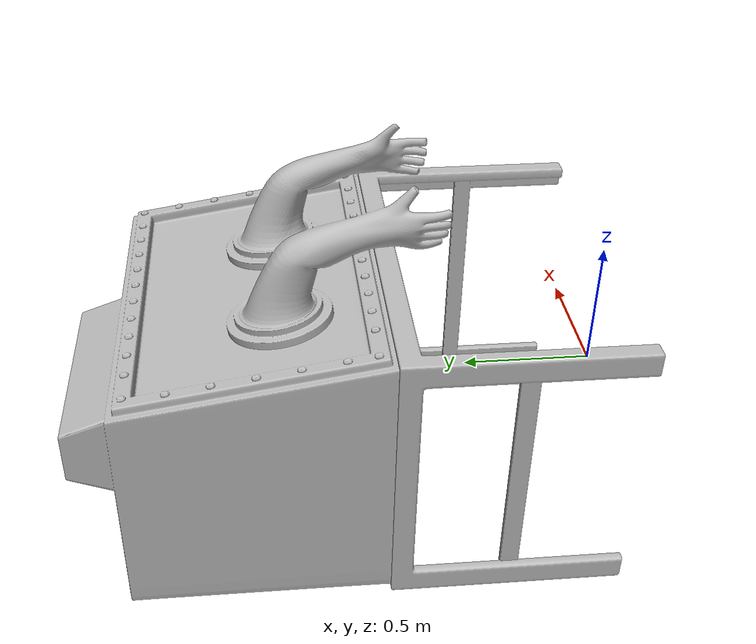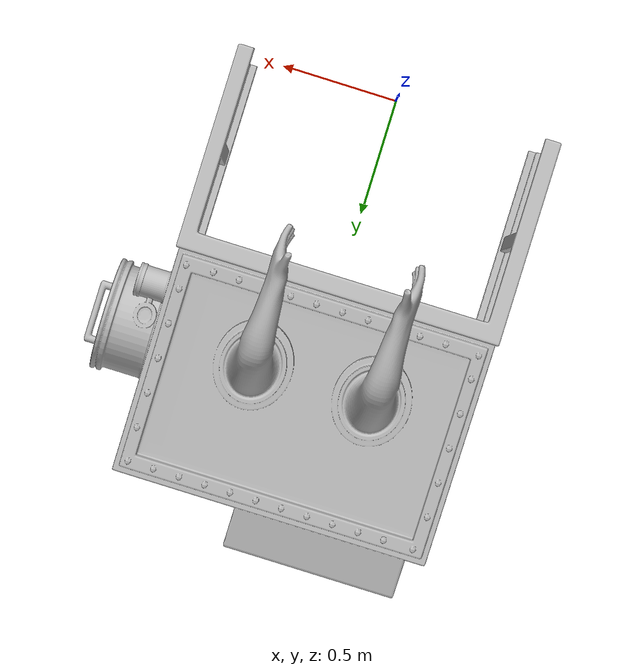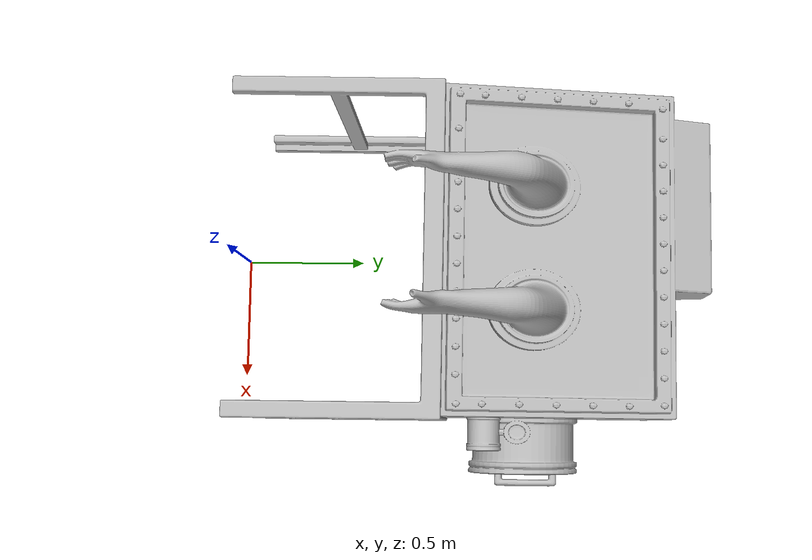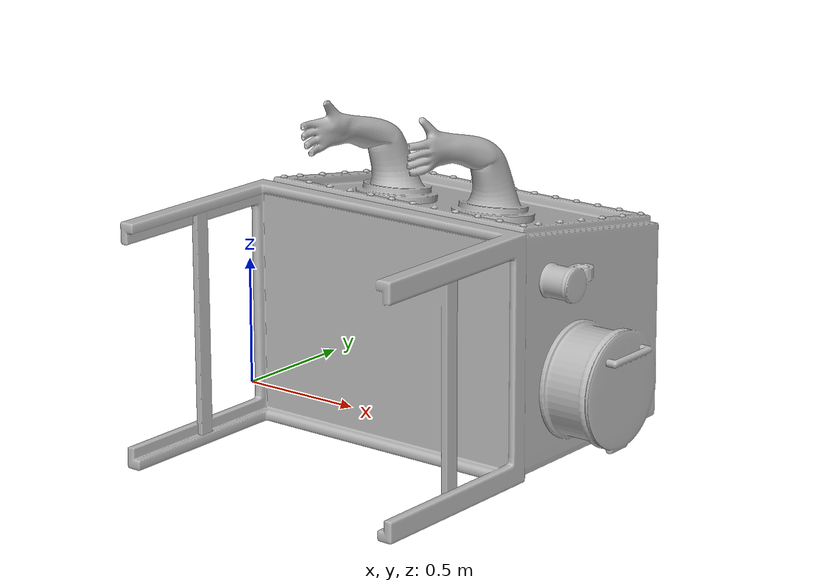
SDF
<?xml version="1.0"?>
<sdf version="1.6">
  <model name="glovebox">
    <static>false</static>  <!-- set false if it should move -->
    <link name="link">
      <visual name="visual">
        <geometry>
          <mesh>
            <uri>model://glovebox/meshes/glovebox.obj</uri>
          </mesh>
        </geometry>
      </visual>
      <collision name="collision">
        <geometry>
          <mesh>
            <uri>model://glovebox/meshes/glovebox.obj</uri>
          </mesh>
        </geometry>
      </collision>
    </link>
  </model>
</sdf>
